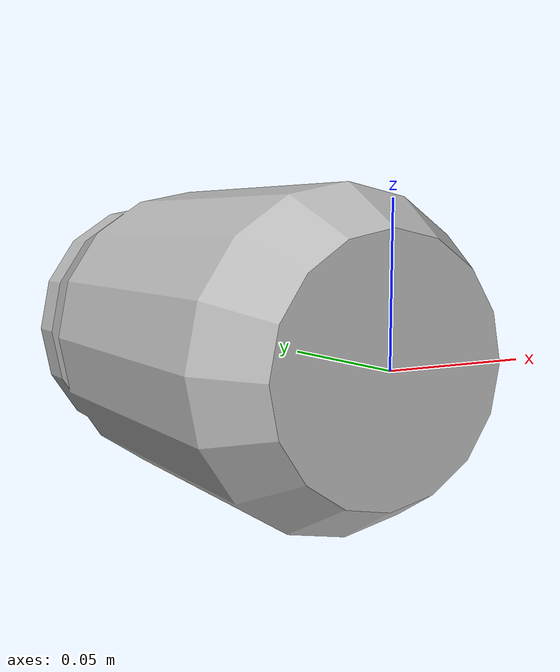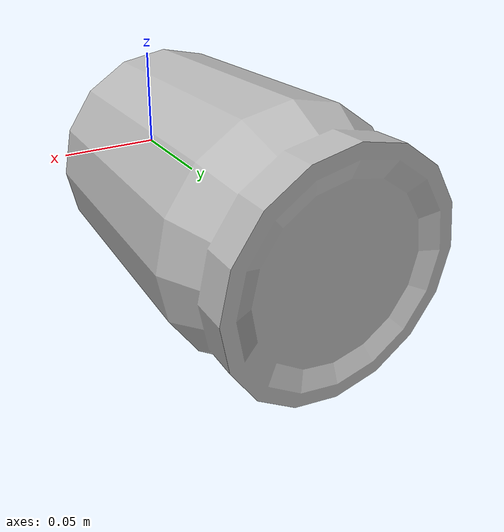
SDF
<?xml version="1.0" ?>
<sdf version="1.4">
  <model name="shelf2_bottle2_2a">
    <link name="body">
      <pose>0 0 0 0 0 0</pose>
      <inertial>
        <pose>   0.000670   0.098231  -0.000430 0 0 0</pose>
        <mass>0.5</mass>
        <inertia>
          <ixx>0.01</ixx>
          <ixy>0</ixy>
          <ixz>0</ixz>
          <iyy>0.01</iyy>
          <iyz>0</iyz>
          <izz>0.01</izz>
        </inertia>
      </inertial>
      <collision name="collision">
        <geometry>
          <mesh>
            <uri>model://bookshelf/shelf2_items/bottle2_2a/bottle2_2a.dae</uri>
          </mesh>
        </geometry>
      </collision>
      <visual name="visual">
        <geometry>
          <mesh>
            <uri>model://bookshelf/shelf2_items/bottle2_2a/bottle2_2a.dae</uri>
          </mesh>
        </geometry>
      </visual>
    </link>
  </model>
</sdf>
